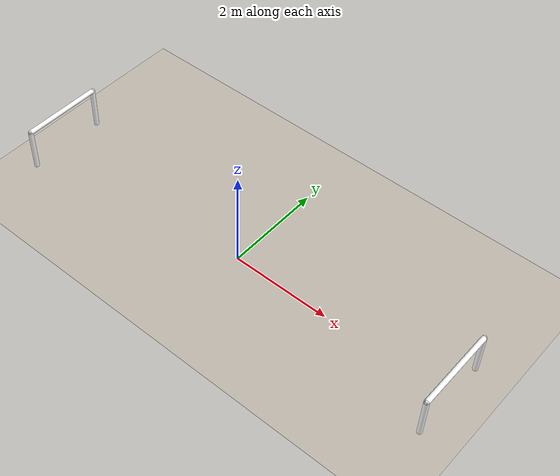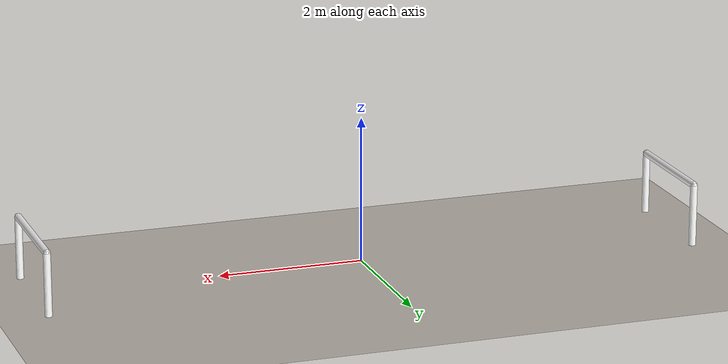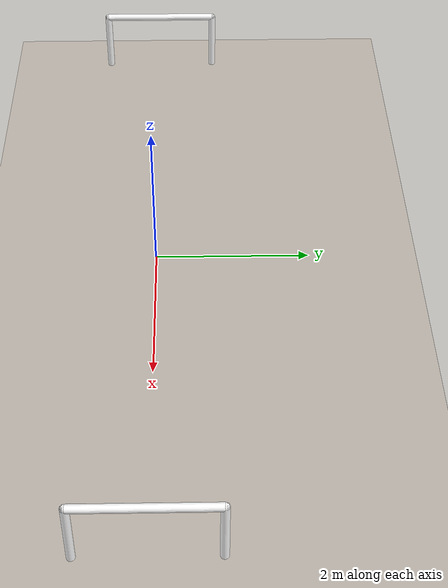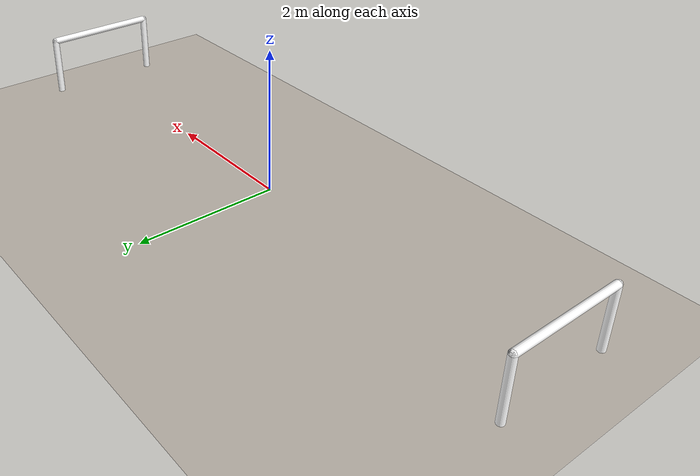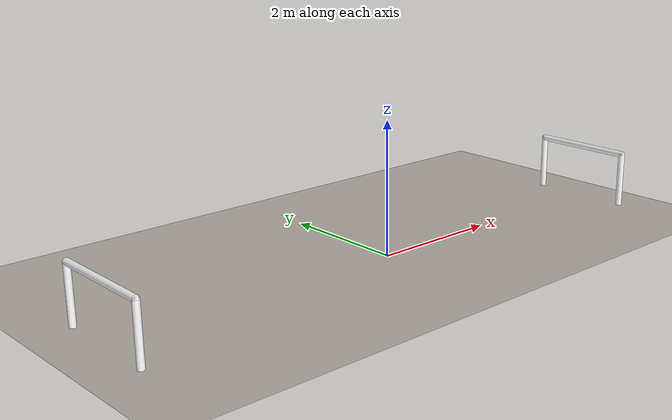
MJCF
<mujoco model="field">
    <asset>
        <texture name="soccer_field_tex" file="../../textures/soccer_field.png" type="2d" />
        <material name="soccer_field_mat" texture="soccer_field_tex" texrepeat="1 1" rgba="1 1 1 1" />
    </asset>

    <worldbody>
        <geom name="ground" type="plane" pos="0 0 0" size="5.2 3.7 0.001"
            material="soccer_field_mat" condim="3" friction="0.8 0.1 0.1" />

        <body name="goal_left" pos="-4.525 0 0">
            <geom type="capsule" size="0.05 0.425"
                fromto="0 -0.8 0 0 -0.8 0.85" rgba="1 1 1 1" />
            <geom type="capsule" size="0.05 0.425"
                fromto="0 0.8 0 0 0.8 0.85" rgba="1 1 1 1" />
            <geom type="capsule" size="0.05 0.8"
                fromto="0 -0.8 0.85 0 0.8 0.85" rgba="1 1 1 1" />
        </body>

        <body name="goal_right" pos="4.525 0 0">
            <geom type="capsule" size="0.05 0.425"
                fromto="0 -0.8 0 0 -0.8 0.85" rgba="1 1 1 1" />
            <geom type="capsule" size="0.05 0.425"
                fromto="0 0.8 0 0 0.8 0.85" rgba="1 1 1 1" />
            <geom type="capsule" size="0.05 0.8"
                fromto="0 -0.8 0.85 0 0.8 0.85" rgba="1 1 1 1" />
        </body>
    </worldbody>

</mujoco>
